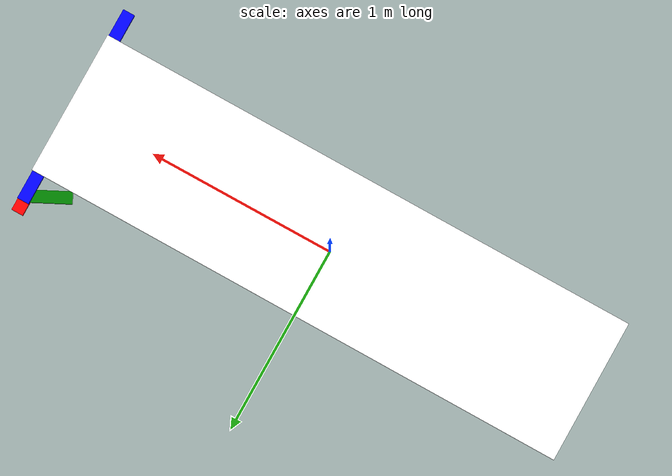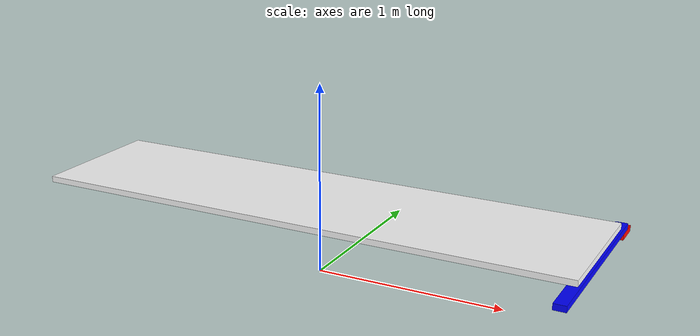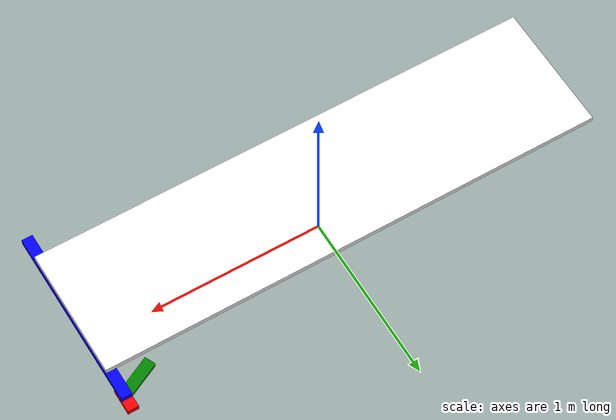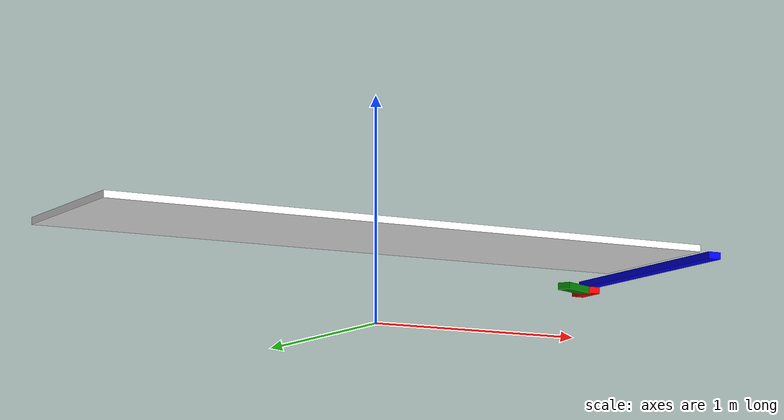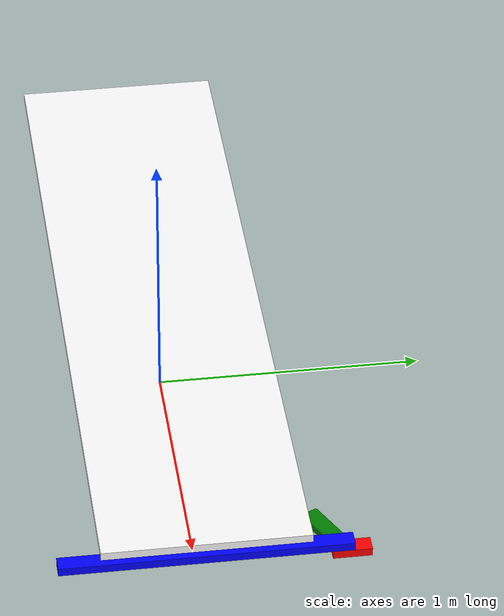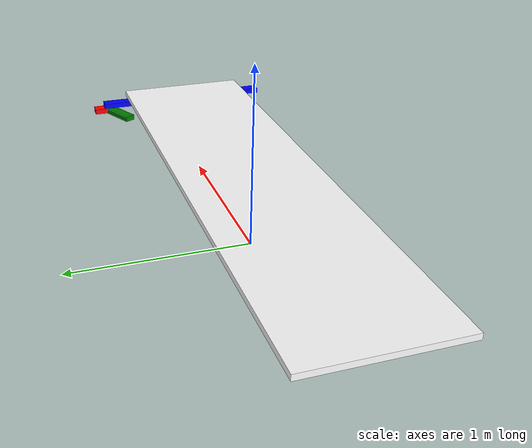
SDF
<?xml version='1.0' ?>

<sdf version='1.6'>
  <model name='prius_1'>

    <link name='chassis_floor'>
      <pose>0 0 0.385184 0 0 0</pose> <!-- relative to the model frame -->
      <inertial>
       <pose>0 0 0 0 0 0</pose>
        <mass>57.833</mass>
        <inertia>
          <ixx>2.71553</ixx>
          <ixy>0</ixy>
          <ixz>0</ixz>
          <iyy>68.9</iyy>
          <iyz>0</iyz>
          <izz>71.6063</izz>
        </inertia>
      </inertial>
      <visual name='main'>
        <pose>0 0 0 0 0 0</pose>
        <geometry>
          <box>
            <size>2.8808 0.75 0.030921</size>
          </box>
        </geometry>
        <material>
          <diffuse>1 1 1 1</diffuse>
        </material>
      </visual>
    </link>

    <link name='front_axle'>
      <pose>1.40948 0 0.3302 0 0 0</pose> <!-- relative to the model frame -->
      <visual name='visual'>
        <pose>0 0 0 0 0 0</pose>
        <geometry>
          <box>
            <size>0.061842 1.05132 0.030921</size>
          </box>
        </geometry>
        <material>
          <diffuse>0 0 1 1</diffuse>
        </material>
      </visual>
    </link>

    <link name='left_tie_rod_arm'>
      <pose>1.23701032 0.40850253 0.299279 0 0 0</pose> <!-- relative to model frame -->

      <visual name='v2'>
        <pose>0.06385963 0.03192981 0 0 0 0.463648</pose> <!-- relative to link reference frame -->
        <geometry>
          <box>
            <size>0.204637 0.061842 0.030921</size>
          </box>
        </geometry>
        <material>
          <diffuse>0 0.5 0 1</diffuse>
        </material>
      </visual>

      <visual name='v1'>
        <pose>0.17246863 0.10851978 0 0 -0 0</pose> <!-- relative to link reference frame -->
        <geometry>
          <box>
            <size>0.061842 0.140955 0.030921</size>
          </box>
        </geometry>
        <material>
          <diffuse>1 0 0 1</diffuse>
        </material>
      </visual>
    </link>

    <joint name='chassis_floor_axle' type='fixed'>
      <parent>chassis_floor</parent>
      <child>front_axle</child>
      <pose>0 0 0 0 0 0</pose> <!-- relative to child frame. -->
    </joint>

    <joint name='steering' type='revolute'>
      <parent>front_axle</parent>
      <child>left_tie_rod_arm</child>
      <pose>0.17246863 0.08623431 0 0 0 0</pose> <!-- relative to child frame -->
      <axis>
        <xyz>0 0 1</xyz>
        <limit>
          <lower>-0.401426</lower>
          <upper>0.5</upper>
        </limit>
      </axis>
    </joint>

  </model>
</sdf>
